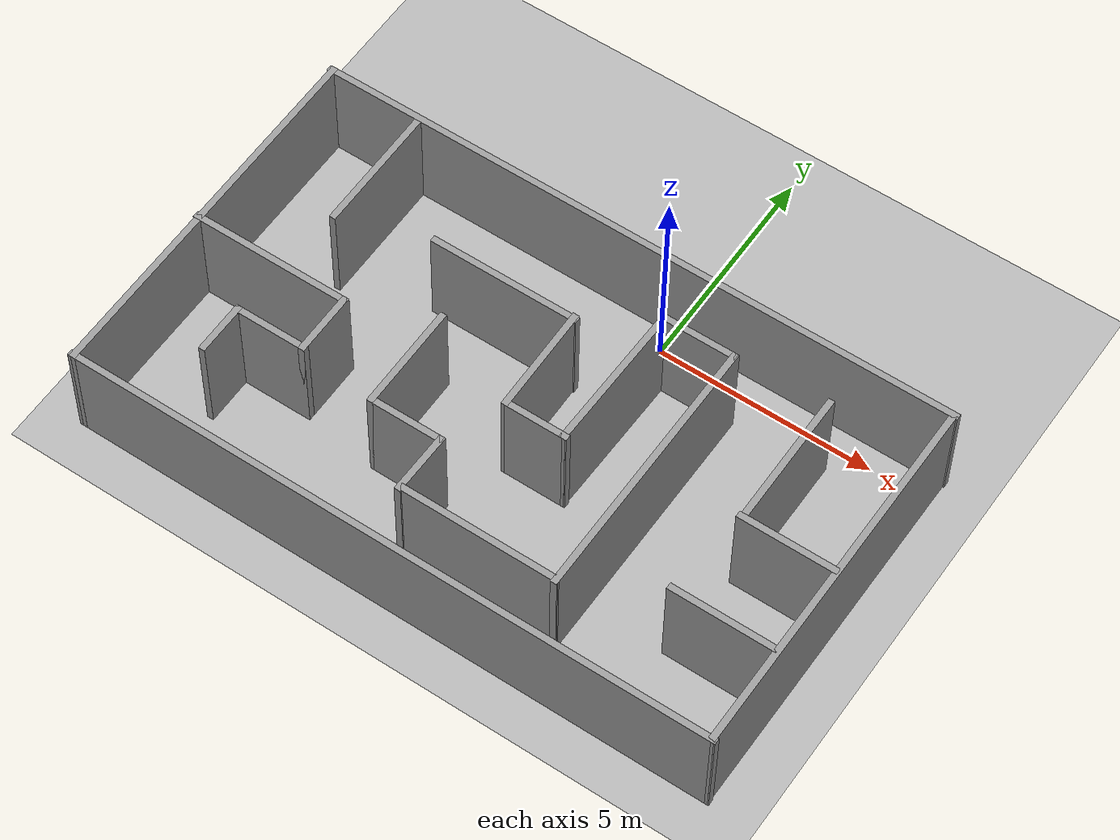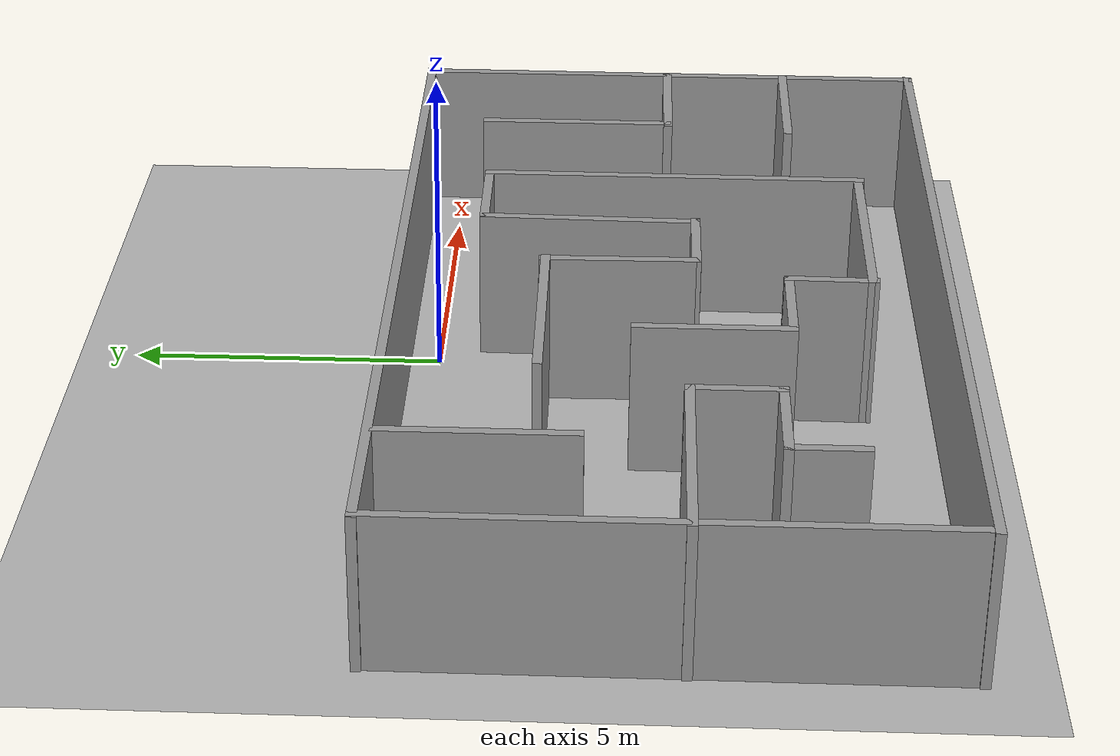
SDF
<sdf version="1.9">
 <world name="default">
  <gravity>0 0 -9.8</gravity>
  <magnetic_field>6e-06 2.3e-05 -4.2e-05</magnetic_field>
  <atmosphere type="adiabatic"/>
  <physics type="ode">
   <max_step_size>0.001</max_step_size>
   <real_time_factor>1</real_time_factor>
   <real_time_update_rate>1000</real_time_update_rate>
  </physics>
  <scene><ambient>0.4 0.4 0.4 1</ambient><background>0.7 0.7 0.7 1</background><shadows>true</shadows></scene>
  <model name="Untitled">
   <pose>-1.11401 -3.71795 0 0 -0 0</pose>
   <link name="Wall_1">
    <collision name="Wall_1_Collision">
     <geometry><box><size>15.054 0.15 2.5</size></box></geometry>
     <pose>0 0 1.25 0 -0 0</pose>
    </collision>
    <visual name="Wall_1_Visual">
     <pose>0 0 1.25 0 -0 0</pose>
     <geometry><box><size>15.054 0.15 2.5</size></box></geometry>
     <material>
      <script><uri>file://media/materials/scripts/gazebo.material</uri><name>Gazebo/Grey</name></script>
      <ambient>1 1 1 1</ambient>
     </material>
     <meta><layer>0</layer></meta>
    </visual>
    <pose>0.00419 4.27373 0 0 -0 0.000256</pose>
    <inertial>
     <mass>1</mass>
     <inertia><ixx>1</ixx><ixy>0</ixy><ixz>0</ixz><iyy>1</iyy><iyz>0</iyz><izz>1</izz></inertia>
    </inertial>
   </link>
   <link name="Wall_12">
    <collision name="Wall_12_Collision">
     <geometry><box><size>3.5 0.15 2.5</size></box></geometry>
     <pose>0 0 1.25 0 -0 0</pose>
    </collision>
    <visual name="Wall_12_Visual">
     <pose>0 0 1.25 0 -0 0</pose>
     <geometry><box><size>3.5 0.15 2.5</size></box></geometry>
     <material>
      <script><uri>file://media/materials/scripts/gazebo.material</uri><name>Gazebo/Grey</name></script>
      <ambient>1 1 1 1</ambient>
     </material>
     <meta><layer>0</layer></meta>
    </visual>
    <pose>-1.53418 1.96785 0 0 -0 0</pose>
    <inertial>
     <mass>1</mass>
     <inertia><ixx>1</ixx><ixy>0</ixy><ixz>0</ixz><iyy>1</iyy><iyz>0</iyz><izz>1</izz></inertia>
    </inertial>
   </link>
   <link name="Wall_13">
    <collision name="Wall_13_Collision">
     <geometry><box><size>2.54554 0.15 2.5</size></box></geometry>
     <pose>0 0 1.25 0 -0 0</pose>
    </collision>
    <visual name="Wall_13_Visual">
     <pose>0 0 1.25 0 -0 0</pose>
     <geometry><box><size>2.54554 0.15 2.5</size></box></geometry>
     <material>
      <script><uri>file://media/materials/scripts/gazebo.material</uri><name>Gazebo/Grey</name></script>
      <ambient>1 1 1 1</ambient>
     </material>
     <meta><layer>0</layer></meta>
    </visual>
    <pose>0.125524 0.800763 0 0 0 -1.55803</pose>
    <inertial>
     <mass>1</mass>
     <inertia><ixx>1</ixx><ixy>0</ixy><ixz>0</ixz><iyy>1</iyy><iyz>0</iyz><izz>1</izz></inertia>
    </inertial>
   </link>
   <link name="Wall_14">
    <collision name="Wall_14_Collision">
     <geometry><box><size>1.53059 0.15 2.5</size></box></geometry>
     <pose>0 0 1.25 0 -0 0</pose>
    </collision>
    <visual name="Wall_14_Visual">
     <pose>0 0 1.25 0 -0 0</pose>
     <geometry><box><size>1.53059 0.15 2.5</size></box></geometry>
     <material>
      <script><uri>file://media/materials/scripts/gazebo.material</uri><name>Gazebo/Grey</name></script>
      <ambient>1 1 1 1</ambient>
     </material>
     <meta><layer>0</layer></meta>
    </visual>
    <pose>0.831114 -0.39691 0 0 -0 0</pose>
    <inertial>
     <mass>1</mass>
     <inertia><ixx>1</ixx><ixy>0</ixy><ixz>0</ixz><iyy>1</iyy><iyz>0</iyz><izz>1</izz></inertia>
    </inertial>
   </link>
   <link name="Wall_15">
    <collision name="Wall_15_Collision">
     <geometry><box><size>3.554 0.15 2.5</size></box></geometry>
     <pose>0 0 1.25 0 -0 0</pose>
    </collision>
    <visual name="Wall_15_Visual">
     <pose>0 0 1.25 0 -0 0</pose>
     <geometry><box><size>3.554 0.15 2.5</size></box></geometry>
     <material>
      <script><uri>file://media/materials/scripts/gazebo.material</uri><name>Gazebo/Grey</name></script>
      <ambient>1 1 1 1</ambient>
     </material>
     <meta><layer>0</layer></meta>
    </visual>
    <pose>1.53082 1.30462 0 0 -0 1.5473</pose>
    <inertial>
     <mass>1</mass>
     <inertia><ixx>1</ixx><ixy>0</ixy><ixz>0</ixz><iyy>1</iyy><iyz>0</iyz><izz>1</izz></inertia>
    </inertial>
   </link>
   <link name="Wall_16">
    <collision name="Wall_16_Collision">
     <geometry><box><size>1.71941 0.15 2.5</size></box></geometry>
     <pose>0 0 1.25 0 -0 0</pose>
    </collision>
    <visual name="Wall_16_Visual">
     <pose>0 0 1.25 0 -0 0</pose>
     <geometry><box><size>1.71941 0.15 2.5</size></box></geometry>
     <material>
      <script><uri>file://media/materials/scripts/gazebo.material</uri><name>Gazebo/Grey</name></script>
      <ambient>1 1 1 1</ambient>
     </material>
     <meta><layer>0</layer></meta>
    </visual>
    <pose>2.38611 3.00615 0 0 -0 0</pose>
    <inertial>
     <mass>1</mass>
     <inertia><ixx>1</ixx><ixy>0</ixy><ixz>0</ixz><iyy>1</iyy><iyz>0</iyz><izz>1</izz></inertia>
    </inertial>
   </link>
   <link name="Wall_17">
    <collision name="Wall_17_Collision">
     <geometry><box><size>6.29283 0.15 2.5</size></box></geometry>
     <pose>0 0 1.25 0 -0 0</pose>
    </collision>
    <visual name="Wall_17_Visual">
     <pose>0 0 1.25 0 -0 0</pose>
     <geometry><box><size>6.29283 0.15 2.5</size></box></geometry>
     <material>
      <script><uri>file://media/materials/scripts/gazebo.material</uri><name>Gazebo/Grey</name></script>
      <ambient>1 1 1 1</ambient>
     </material>
     <meta><layer>0</layer></meta>
    </visual>
    <pose>3.17992 -0.065217 0 0 0 -1.57649</pose>
    <inertial>
     <mass>1</mass>
     <inertia><ixx>1</ixx><ixy>0</ixy><ixz>0</ixz><iyy>1</iyy><iyz>0</iyz><izz>1</izz></inertia>
    </inertial>
   </link>
   <link name="Wall_18">
    <collision name="Wall_18_Collision">
     <geometry><box><size>3.75 0.15 2.5</size></box></geometry>
     <pose>0 0 1.25 0 -0 0</pose>
    </collision>
    <visual name="Wall_18_Visual">
     <pose>0 0 1.25 0 -0 0</pose>
     <geometry><box><size>3.75 0.15 2.5</size></box></geometry>
     <material>
      <script><uri>file://media/materials/scripts/gazebo.material</uri><name>Gazebo/Grey</name></script>
      <ambient>1 1 1 1</ambient>
     </material>
     <meta><layer>0</layer></meta>
    </visual>
    <pose>1.36243 -3.10599 0 0 -0 3.14159</pose>
    <inertial>
     <mass>1</mass>
     <inertia><ixx>1</ixx><ixy>0</ixy><ixz>0</ixz><iyy>1</iyy><iyz>0</iyz><izz>1</izz></inertia>
    </inertial>
   </link>
   <link name="Wall_19">
    <collision name="Wall_19_Collision">
     <geometry><box><size>1.47303 0.15 2.5</size></box></geometry>
     <pose>0 0 1.25 0 -0 0</pose>
    </collision>
    <visual name="Wall_19_Visual">
     <pose>0 0 1.25 0 -0 0</pose>
     <geometry><box><size>1.47303 0.15 2.5</size></box></geometry>
     <material>
      <script><uri>file://media/materials/scripts/gazebo.material</uri><name>Gazebo/Grey</name></script>
      <ambient>1 1 1 1</ambient>
     </material>
     <meta><layer>0</layer></meta>
    </visual>
    <pose>-0.424792 -2.47531 0 0 -0 1.55148</pose>
    <inertial>
     <mass>1</mass>
     <inertia><ixx>1</ixx><ixy>0</ixy><ixz>0</ixz><iyy>1</iyy><iyz>0</iyz><izz>1</izz></inertia>
    </inertial>
   </link>
   <link name="Wall_2">
    <collision name="Wall_2_Collision">
     <geometry><box><size>8.69776 0.15 2.5</size></box></geometry>
     <pose>0 0 1.25 0 -0 0</pose>
    </collision>
    <visual name="Wall_2_Visual">
     <pose>0 0 1.25 0 -0 0</pose>
     <geometry><box><size>8.69776 0.15 2.5</size></box></geometry>
     <material>
      <script><uri>file://media/materials/scripts/gazebo.material</uri><name>Gazebo/Grey</name></script>
      <ambient>1 1 1 1</ambient>
     </material>
     <meta><layer>0</layer></meta>
    </visual>
    <pose>7.40809 0.001792 0 0 0 -1.57489</pose>
    <inertial>
     <mass>1</mass>
     <inertia><ixx>1</ixx><ixy>0</ixy><ixz>0</ixz><iyy>1</iyy><iyz>0</iyz><izz>1</izz></inertia>
    </inertial>
   </link>
   <link name="Wall_20">
    <collision name="Wall_20_Collision">
     <geometry><box><size>1.75 0.15 2.5</size></box></geometry>
     <pose>0 0 1.25 0 -0 0</pose>
    </collision>
    <visual name="Wall_20_Visual">
     <pose>0 0 1.25 0 -0 0</pose>
     <geometry><box><size>1.75 0.15 2.5</size></box></geometry>
     <material>
      <script><uri>file://media/materials/scripts/gazebo.material</uri><name>Gazebo/Grey</name></script>
      <ambient>1 1 1 1</ambient>
     </material>
     <meta><layer>0</layer></meta>
    </visual>
    <pose>-1.2426 -1.81404 0 0 -0 3.14159</pose>
    <inertial>
     <mass>1</mass>
     <inertia><ixx>1</ixx><ixy>0</ixy><ixz>0</ixz><iyy>1</iyy><iyz>0</iyz><izz>1</izz></inertia>
    </inertial>
   </link>
   <link name="Wall_24">
    <collision name="Wall_24_Collision">
     <geometry><box><size>2.25 0.15 2.5</size></box></geometry>
     <pose>0 0 1.25 0 -0 0</pose>
    </collision>
    <visual name="Wall_24_Visual">
     <pose>0 0 1.25 0 -0 0</pose>
     <geometry><box><size>2.25 0.15 2.5</size></box></geometry>
     <material>
      <script><uri>file://media/materials/scripts/gazebo.material</uri><name>Gazebo/Grey</name></script>
      <ambient>1 1 1 1</ambient>
     </material>
     <meta><layer>0</layer></meta>
    </visual>
    <pose>6.31227 0.030269 0 0 -0 3.14159</pose>
    <inertial>
     <mass>1</mass>
     <inertia><ixx>1</ixx><ixy>0</ixy><ixz>0</ixz><iyy>1</iyy><iyz>0</iyz><izz>1</izz></inertia>
    </inertial>
   </link>
   <link name="Wall_28">
    <collision name="Wall_28_Collision">
     <geometry><box><size>3.75 0.15 2.5</size></box></geometry>
     <pose>0 0 1.25 0 -0 0</pose>
    </collision>
    <visual name="Wall_28_Visual">
     <pose>0 0 1.25 0 -0 0</pose>
     <geometry><box><size>3.75 0.15 2.5</size></box></geometry>
     <material>
      <script><uri>file://media/materials/scripts/gazebo.material</uri><name>Gazebo/Grey</name></script>
      <ambient>1 1 1 1</ambient>
     </material>
     <meta><layer>0</layer></meta>
    </visual>
    <pose>-5.65395 -0.245043 0 0 -0 0</pose>
    <inertial>
     <mass>1</mass>
     <inertia><ixx>1</ixx><ixy>0</ixy><ixz>0</ixz><iyy>1</iyy><iyz>0</iyz><izz>1</izz></inertia>
    </inertial>
   </link>
   <link name="Wall_29">
    <collision name="Wall_29_Collision">
     <geometry><box><size>1.5 0.15 2.5</size></box></geometry>
     <pose>0 0 1.25 0 -0 0</pose>
    </collision>
    <visual name="Wall_29_Visual">
     <pose>0 0 1.25 0 -0 0</pose>
     <geometry><box><size>1.5 0.15 2.5</size></box></geometry>
     <material>
      <script><uri>file://media/materials/scripts/gazebo.material</uri><name>Gazebo/Grey</name></script>
      <ambient>1 1 1 1</ambient>
     </material>
     <meta><layer>0</layer></meta>
    </visual>
    <pose>-3.85395 -0.920043 0 0 0 -1.5708</pose>
    <inertial>
     <mass>1</mass>
     <inertia><ixx>1</ixx><ixy>0</ixy><ixz>0</ixz><iyy>1</iyy><iyz>0</iyz><izz>1</izz></inertia>
    </inertial>
   </link>
   <link name="Wall_3">
    <collision name="Wall_3_Collision">
     <geometry><box><size>15.0274 0.15 2.5</size></box></geometry>
     <pose>0 0 1.25 0 -0 0</pose>
    </collision>
    <visual name="Wall_3_Visual">
     <pose>0 0 1.25 0 -0 0</pose>
     <geometry><box><size>15.0274 0.15 2.5</size></box></geometry>
     <material>
      <script><uri>file://media/materials/scripts/gazebo.material</uri><name>Gazebo/Grey</name></script>
      <ambient>1 1 1 1</ambient>
     </material>
     <meta><layer>0</layer></meta>
    </visual>
    <pose>-0.01749 -4.27396 0 0 0 -3.14134</pose>
    <inertial>
     <mass>1</mass>
     <inertia><ixx>1</ixx><ixy>0</ixy><ixz>0</ixz><iyy>1</iyy><iyz>0</iyz><izz>1</izz></inertia>
    </inertial>
   </link>
   <link name="Wall_30">
    <collision name="Wall_30_Collision">
     <geometry><box><size>1.75 0.15 2.5</size></box></geometry>
     <pose>0 0 1.25 0 -0 0</pose>
    </collision>
    <visual name="Wall_30_Visual">
     <pose>0 0 1.25 0 -0 0</pose>
     <geometry><box><size>1.75 0.15 2.5</size></box></geometry>
     <material>
      <script><uri>file://media/materials/scripts/gazebo.material</uri><name>Gazebo/Grey</name></script>
      <ambient>1 1 1 1</ambient>
     </material>
     <meta><layer>0</layer></meta>
    </visual>
    <pose>-4.65395 -1.59504 0 0 -0 3.14159</pose>
    <inertial>
     <mass>1</mass>
     <inertia><ixx>1</ixx><ixy>0</ixy><ixz>0</ixz><iyy>1</iyy><iyz>0</iyz><izz>1</izz></inertia>
    </inertial>
   </link>
   <link name="Wall_31">
    <collision name="Wall_31_Collision">
     <geometry><box><size>1.25 0.15 2.5</size></box></geometry>
     <pose>0 0 1.25 0 -0 0</pose>
    </collision>
    <visual name="Wall_31_Visual">
     <pose>0 0 1.25 0 -0 0</pose>
     <geometry><box><size>1.25 0.15 2.5</size></box></geometry>
     <material>
      <script><uri>file://media/materials/scripts/gazebo.material</uri><name>Gazebo/Grey</name></script>
      <ambient>1 1 1 1</ambient>
     </material>
     <meta><layer>0</layer></meta>
    </visual>
    <pose>-5.45395 -2.14504 0 0 0 -1.5708</pose>
    <inertial>
     <mass>1</mass>
     <inertia><ixx>1</ixx><ixy>0</ixy><ixz>0</ixz><iyy>1</iyy><iyz>0</iyz><izz>1</izz></inertia>
    </inertial>
   </link>
   <link name="Wall_33">
    <collision name="Wall_33_Collision">
     <geometry><box><size>3 0.15 2.5</size></box></geometry>
     <pose>0 0 1.25 0 -0 0</pose>
    </collision>
    <visual name="Wall_33_Visual">
     <pose>0 0 1.25 0 -0 0</pose>
     <geometry><box><size>3 0.15 2.5</size></box></geometry>
     <material>
      <script><uri>file://media/materials/scripts/gazebo.material</uri><name>Gazebo/Grey</name></script>
      <ambient>1 1 1 1</ambient>
     </material>
     <meta><layer>0</layer></meta>
    </visual>
    <pose>-5.22086 2.73495 0 0 0 -1.5708</pose>
    <inertial>
     <mass>1</mass>
     <inertia><ixx>1</ixx><ixy>0</ixy><ixz>0</ixz><iyy>1</iyy><iyz>0</iyz><izz>1</izz></inertia>
    </inertial>
   </link>
   <link name="Wall_36">
    <collision name="Wall_36_Collision">
     <geometry><box><size>2.5 0.15 2.5</size></box></geometry>
     <pose>0 0 1.25 0 -0 0</pose>
    </collision>
    <visual name="Wall_36_Visual">
     <pose>0 0 1.25 0 -0 0</pose>
     <geometry><box><size>2.5 0.15 2.5</size></box></geometry>
     <material>
      <script><uri>file://media/materials/scripts/gazebo.material</uri><name>Gazebo/Grey</name></script>
      <ambient>1 1 1 1</ambient>
     </material>
     <meta><layer>0</layer></meta>
    </visual>
    <pose>-2.04261 -0.639038 0 0 -0 1.5708</pose>
    <inertial>
     <mass>1</mass>
     <inertia><ixx>1</ixx><ixy>0</ixy><ixz>0</ixz><iyy>1</iyy><iyz>0</iyz><izz>1</izz></inertia>
    </inertial>
   </link>
   <link name="Wall_39">
    <collision name="Wall_39_Collision">
     <geometry><box><size>3.25 0.15 2.5</size></box></geometry>
     <pose>0 0 1.25 0 -0 0</pose>
    </collision>
    <visual name="Wall_39_Visual">
     <pose>0 0 1.25 0 -0 0</pose>
     <geometry><box><size>3.25 0.15 2.5</size></box></geometry>
     <material>
      <script><uri>file://media/materials/scripts/gazebo.material</uri><name>Gazebo/Grey</name></script>
      <ambient>1 1 1 1</ambient>
     </material>
     <meta><layer>0</layer></meta>
    </visual>
    <pose>5.30217 1.60047 0 0 0 -1.5708</pose>
    <inertial>
     <mass>1</mass>
     <inertia><ixx>1</ixx><ixy>0</ixy><ixz>0</ixz><iyy>1</iyy><iyz>0</iyz><izz>1</izz></inertia>
    </inertial>
   </link>
   <link name="Wall_4">
    <collision name="Wall_4_Collision">
     <geometry><box><size>8.69769 0.15 2.5</size></box></geometry>
     <pose>0 0 1.25 0 -0 0</pose>
    </collision>
    <visual name="Wall_4_Visual">
     <pose>0 0 1.25 0 -0 0</pose>
     <geometry><box><size>8.69769 0.15 2.5</size></box></geometry>
     <material>
      <script><uri>file://media/materials/scripts/gazebo.material</uri><name>Gazebo/Grey</name></script>
      <ambient>1 1 1 1</ambient>
     </material>
     <meta><layer>0</layer></meta>
    </visual>
    <pose>-7.42139 -0.002025 0 0 -0 1.56982</pose>
    <inertial>
     <mass>1</mass>
     <inertia><ixx>1</ixx><ixy>0</ixy><ixz>0</ixz><iyy>1</iyy><iyz>0</iyz><izz>1</izz></inertia>
    </inertial>
   </link>
   <link name="Wall_41">
    <collision name="Wall_41_Collision">
     <geometry><box><size>2.5 0.15 2.5</size></box></geometry>
     <pose>0 0 1.25 0 -0 0</pose>
    </collision>
    <visual name="Wall_41_Visual">
     <pose>0 0 1.25 0 -0 0</pose>
     <geometry><box><size>2.5 0.15 2.5</size></box></geometry>
     <material>
      <script><uri>file://media/materials/scripts/gazebo.material</uri><name>Gazebo/Grey</name></script>
      <ambient>1 1 1 1</ambient>
     </material>
     <meta><layer>0</layer></meta>
    </visual>
    <pose>6.21549 -2.03098 0 0 -0 3.14159</pose>
    <inertial>
     <mass>1</mass>
     <inertia><ixx>1</ixx><ixy>0</ixy><ixz>0</ixz><iyy>1</iyy><iyz>0</iyz><izz>1</izz></inertia>
    </inertial>
   </link>
   <static>true</static>
  </model>
  <model name="ground_plane">
   <static>true</static>
   <link name="link">
    <collision name="collision">
     <geometry><plane><normal>0 0 1</normal><size>100 100</size></plane></geometry>
     <surface><friction><ode><mu>100</mu><mu2>50</mu2></ode></friction></surface>
    </collision>
    <visual name="visual">
     <cast_shadows>false</cast_shadows>
     <geometry><plane><normal>0 0 1</normal><size>100 100</size></plane></geometry>
     <material>
      <ambient>0.3 0.3 0.3 1</ambient>
      <diffuse>0.7 0.7 0.7 1</diffuse>
      <specular>0.01 0.01 0.01 1</specular>
     </material>
    </visual>
    <inertial>
     <mass>1</mass>
     <inertia><ixx>1</ixx><ixy>0</ixy><ixz>0</ixz><iyy>1</iyy><iyz>0</iyz><izz>1</izz></inertia>
    </inertial>
   </link>
   <pose>-2.32888 2.08865 0 0 -0 0</pose>
  </model>
  <light name="sun" type="directional">
   <pose>35.3611 -8.56298 10 0 -0 0</pose>
   <intensity>1</intensity>
   <direction>-0.5 0.1 -0.9</direction>
   <diffuse>0.8 0.8 0.8 1</diffuse>
   <specular>0.2 0.2 0.2 1</specular>
   <attenuation>
    <range>1000</range>
    <linear>0.01</linear>
    <constant>0.90000000000000002</constant>
    <quadratic>0.001</quadratic>
   </attenuation>
   <spot><inner_angle>0</inner_angle><outer_angle>0</outer_angle><falloff>0</falloff></spot>
  </light>
 </world>
</sdf>
